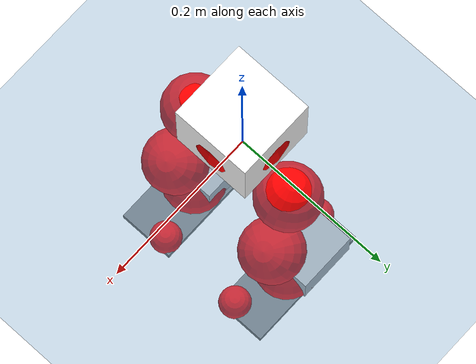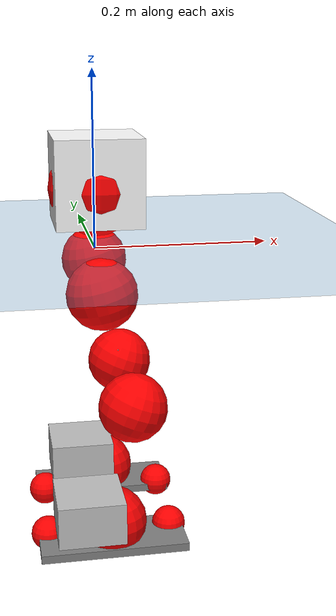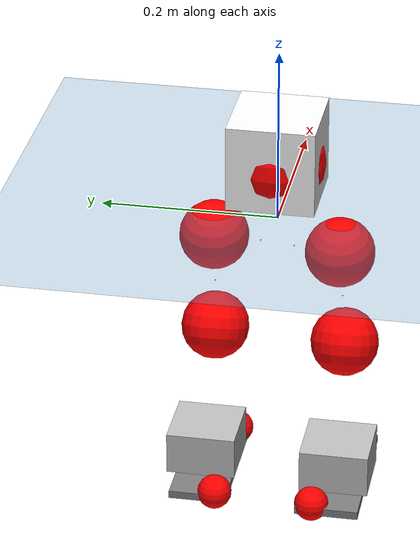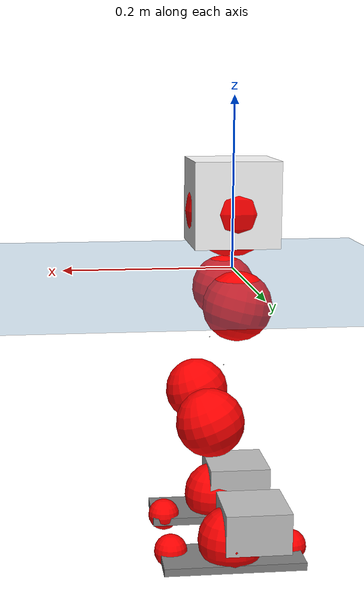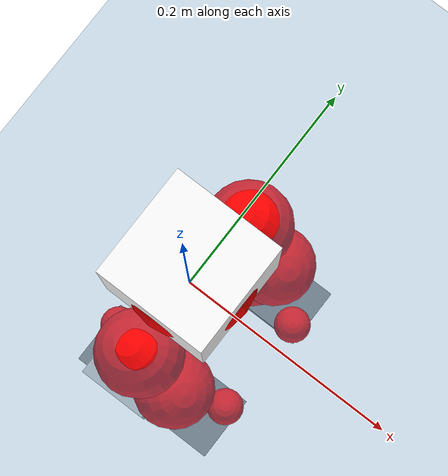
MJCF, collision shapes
<mujoco model="pi_12dof_release_v1">
  <compiler angle="radian" assetdir="assets" balanceinertia="true" inertiafromgeom="false"/>

  <option timestep="0.005" density="1.2" viscosity="2e-05"/>

  <size nkey="1"/>

  <visual>
    <quality shadowsize="8192"/>
    <map shadowclip="0.5"/>
  </visual>

  <default>
    <default class="/">
      <joint armature="0.01" damping="0.01" frictionloss="0.01"/>
      <geom contype="0" conaffinity="0" group="1" solref="-1000 -80"/>
      <site size="0.01 0.005 0.005" group="5"/>
      <general forcelimited="true" biastype="affine" gainprm="20" biasprm="0 -20 -0.5"/>
      <default class="foot">
        <geom size="0.0845 0.036 0.005" type="box" condim="6" group="4" priority="1" friction="0.9 0.2 0.2" solimp="0.015 1 0.005"/>
      </default>
      <default class="reward_collision_sphere">
        <geom group="5" rgba="1 0 0 1"/>
      </default>
    </default>
  </default>

  <asset>
    <texture type="skybox" colorspace="auto" name="//unnamed_texture_0" builtin="gradient" rgb1="0.95 0.95 0.95" rgb2="0.95 0.95 0.95" width="100" height="600"/>
    <texture type="2d" colorspace="auto" name="texplane" builtin="checker" rgb1="0.345 0.575 0.748" rgb2="0.345 0.575 0.748" markrgb="1 1 1" width="512" height="512"/>
    <material name="MatPlane" class="/" texture="texplane" texuniform="true" texrepeat="2 2" specular="0.9"/>
    <mesh name="baselink_1" class="/" file="baselink_1.STL"/>
    <mesh name="r_hip_pitch_link" class="/" file="r_hip_pitch_link.STL"/>
    <mesh name="r_hip_roll_link" class="/" file="r_hip_roll_link.STL"/>
    <mesh name="r_thigh_link" class="/" file="r_thigh_link.STL"/>
    <mesh name="r_calf_link" class="/" file="r_calf_link.STL"/>
    <mesh name="r_ankle_pitch_link" class="/" file="r_ankle_pitch_link.STL"/>
    <mesh name="r_ankle_roll_link" class="/" file="r_ankle_roll_link.STL"/>
    <mesh name="l_hip_pitch_link" class="/" file="l_hip_pitch_link.STL"/>
    <mesh name="l_hip_roll_link" class="/" file="l_hip_roll_link.STL"/>
    <mesh name="l_thigh_link" class="/" file="l_thigh_link.STL"/>
    <mesh name="l_calf_link" class="/" file="l_calf_link.STL"/>
    <mesh name="l_ankle_pitch_link" class="/" file="l_ankle_pitch_link.STL"/>
    <mesh name="l_ankle_roll_link" class="/" file="l_ankle_roll_link.STL"/>
  </asset>

  <worldbody>
    <geom name="floor" class="/" size="100 100 0.125" type="plane" group="0" material="MatPlane"/>
    <light name="toplight_shadow" class="/" pos="0 0 5" dir="0.0990148 0.0990148 -0.990148" type="directional" ambient="0.04 0.04 0.04" diffuse="0.55 0.55 0.55" specular="0.12 0.12 0.12"/>
    <light name="toplight_fill" class="/" pos="0 0 5" dir="0.0990148 0.0990148 -0.990148" type="directional" castshadow="false" ambient="0.04 0.04 0.04" diffuse="0.3 0.3 0.3" specular="0.08 0.08 0.08"/>
    <body name="trunk" pos="0.00243949 0.00139478 0.0008201" quat="1 -6.58281e-05 1.08072e-05 2.20738e-05">
      <inertial pos="0.00238962 -0.000225387 0.0393252" quat="0.69627 0.00310302 0.019192 0.717516" mass="2.10002" diaginertia="0.0141849 0.00643654 0.00363087"/>
      <joint name="//unnamed_joint_0" type="free"/>
      <geom name="//unnamed_geom_1" class="/" type="mesh" density="0" rgba="1 1 1 1" mesh="baselink_1"/>
      <geom name="//unnamed_geom_2" class="/" size="0.0493502 0.0493502 0.0493502" pos="0 0 0.0779071" type="box" rgba="1 1 1 1"/>
      <geom name="//unnamed_geom_3" class="reward_collision_sphere" size="0.0542852" pos="0 0 0.0681687"/>
      <site name="imu" class="/" pos="0.00105825 0.00510905 -0.00933573" size="0.00987004"/>
      <camera name="track" class="/" pos="0 -1.84706 0" quat="0.707107 0.707107 0 0" mode="trackcom"/>
      <camera name="ego_camera" class="/" pos="0.0797733 0 0.175291" quat="-0.5 -0.5 0.5 0.5"/>
      <body name="r_hip_pitch_link" pos="-0.000784814 -0.0202015 -0.0344441" quat="0.992244 0.00103486 -0.124299 0.00063038">
        <inertial pos="-0.00103725 -0.054107 0.000410566" quat="-0.0177007 0.70505 -0.0286145 0.708358" mass="0.358354" diaginertia="0.000149009 6.36749e-05 7.38722e-05"/>
        <joint name="r_hip_pitch_joint" class="/" pos="0 0 0" axis="-0.00960466 -0.999932 0.00665927" stiffness="0.000470044" range="-1.70812 1.30452" armature="0.00982205" damping="0.0210419" frictionloss="0.00997094"/>
        <geom name="//unnamed_geom_4" class="/" type="mesh" density="0" rgba="0.75294 0.75294 0.75294 1" mesh="r_hip_pitch_link"/>
        <geom name="//unnamed_geom_5" class="/" size="0.000493502 0.000493502 0.000493502" type="box" rgba="0.75294 0.75294 0.75294 1"/>
        <body name="r_hip_roll_link" pos="-0.00296755 -0.0521612 -0.00143894" quat="0.999999 -0.000502236 -0.000960757 0.000193139">
          <inertial pos="-0.000983997 -0.000653995 -0.0609178" quat="0.702727 -0.0708142 -0.0851104 0.702792" mass="0.367058" diaginertia="0.000450113 0.000185006 0.00011108"/>
          <joint name="r_hip_roll_joint" class="/" pos="0 0 0" axis="-0.999898 0.00893843 0.0110959" range="-0.142165 0.548348" armature="0.0105952" damping="0" frictionloss="0.00847104"/>
          <geom name="//unnamed_geom_6" class="/" type="mesh" density="0" rgba="0.75294 0.75294 0.75294 1" mesh="r_hip_roll_link"/>
          <geom name="//unnamed_geom_7" class="/" size="0.000493502 0.000493502 0.000493502" type="box" rgba="0.75294 0.75294 0.75294 1"/>
          <geom name="//unnamed_geom_8" class="reward_collision_sphere" size="0.0394802"/>
          <body name="r_thigh_link" pos="4.94041e-05 -0.00137304 -0.0664191" quat="0.999999 -0.000336692 -0.00122089 -0.000176517">
            <inertial pos="0.00246625 0.000558529 -0.0461724" quat="0.736539 0.676312 -0.00946097 0.00478916" mass="0.115655" diaginertia="0.000169527 6.597e-05 5.06608e-05"/>
            <joint name="r_thigh_joint" class="/" pos="0 0 0" axis="0.0135598 0.00810003 -0.999875" stiffness="0.000240972" range="-0.245607 0.634221" armature="0.0100611" damping="0.000140095" frictionloss="0.00889863"/>
            <geom name="//unnamed_geom_9" class="/" type="mesh" density="0" rgba="0.75294 0.75294 0.75294 1" mesh="r_thigh_link"/>
            <geom name="//unnamed_geom_10" class="/" size="0.000493502 0.000493502 0.000493502" type="box" rgba="0.75294 0.75294 0.75294 1"/>
            <body name="r_calf_link" pos="-0.00159818 -0.001535 -0.070688" quat="0.947641 -0.000537385 0.319337 0.000146304">
              <inertial pos="0.00156853 -3.94888e-05 -0.0700908" quat="0.999941 -0.0073724 -0.00153723 -0.007828" mass="0.791884" diaginertia="0.00495185 0.00232588 0.000156272"/>
              <joint name="r_calf_joint" class="/" pos="0 0 0" axis="-0.00174103 -0.999994 0.00312174" range="-1.63106 0.644079" armature="0.0109072" damping="0.00978878" frictionloss="0.0103037"/>
              <geom name="//unnamed_geom_11" class="/" type="mesh" density="0" rgba="0.75294 0.75294 0.75294 1" mesh="r_calf_link"/>
              <geom name="//unnamed_geom_12" class="/" size="0.000493502 0.000493502 0.000493502" type="box" rgba="0.75294 0.75294 0.75294 1"/>
              <geom name="//unnamed_geom_13" class="reward_collision_sphere" size="0.0394802"/>
              <body name="r_ankle_pitch_link" pos="-0.000485056 -0.00218867 -0.13408" quat="0.980063 3.20089e-05 -0.198685 -2.94407e-06">
                <inertial pos="0.00280961 0.00441978 -0.000389766" quat="0.00134976 0.707294 -0.000891426 0.706918" mass="0.170707" diaginertia="0.000423973 0.00014886 0.000105885"/>
                <joint name="r_ankle_pitch_joint" class="/" pos="0 0 0" axis="0.0152909 -0.999878 0.00331479" stiffness="0.00851694" range="-1.26468 0.500274" armature="0.0086911" damping="0.0175748" frictionloss="0.00846997"/>
                <geom name="//unnamed_geom_14" class="/" type="mesh" density="0" rgba="0.75294 0.75294 0.75294 1" mesh="r_ankle_pitch_link"/>
                <geom name="//unnamed_geom_15" class="/" size="0.0384932 0.0394802 0.0246751" type="box" rgba="0.75294 0.75294 0.75294 1"/>
                <body name="r_ankle_roll_link" pos="0.0811388 0.00504429 0.00247654" quat="1 -0.000326969 0.000567541 0.000544318">
                  <inertial pos="-0.0241687 -0.00250038 -0.0115034" quat="0.559789 0.427485 0.435322 0.560702" mass="0.487793" diaginertia="0.0016029 0.000723882 0.000256358"/>
                  <joint name="r_ankle_roll_joint" class="/" pos="0 0 0" axis="-0.99997 -0.000634381 -0.00772793" range="-0.146787 0.170797" armature="0.009868" damping="0.0167738" frictionloss="0.0103278"/>
                  <geom name="//unnamed_geom_16" class="/" type="mesh" density="0" rgba="0.75294 0.75294 0.75294 1" mesh="r_ankle_roll_link"/>
                  <geom name="//unnamed_geom_17" class="/" type="mesh" rgba="0.75294 0.75294 0.75294 1" mesh="r_ankle_roll_link"/>
                  <geom name="right_foot" class="foot" size="0.0848832 0.0364082 0.00483055" pos="-0.0542459 0 -0.0428489"/>
                  <geom name="//unnamed_geom_19" class="reward_collision_sphere" size="0.0394802" pos="-0.0531822 0 -0.0194768"/>
                  <geom name="//unnamed_geom_20" class="reward_collision_sphere" size="0.0197401" pos="0.0159547 0.0184706 -0.0389536"/>
                  <geom name="//unnamed_geom_21" class="reward_collision_sphere" size="0.0197401" pos="-0.127637 0.0184706 -0.0389536"/>
                  <site name="right_foot" class="foot" pos="-0.0542459 0 -0.0428489" size="0.00987004"/>
                </body>
              </body>
            </body>
          </body>
        </body>
      </body>
      <body name="l_hip_pitch_link" pos="0.000581185 0.0181011 -0.0318979" quat="0.99222 -5.53421e-05 -0.124497 0.000161726">
        <inertial pos="0.00296101 0.0487112 -0.000166303" quat="-0.0450818 0.700595 0.0210306 0.711823" mass="0.363179" diaginertia="0.000173649 7.00116e-05 8.49461e-05"/>
        <joint name="l_hip_pitch_joint" class="/" pos="0 0 0" axis="0.00277095 0.999995 -0.00175419" range="-1.29177 1.73175" armature="0.00898133" damping="0.00882201" frictionloss="0.01092"/>
        <geom name="//unnamed_geom_22" class="/" type="mesh" density="0" rgba="0.75294 0.75294 0.75294 1" mesh="l_hip_pitch_link"/>
        <geom name="//unnamed_geom_23" class="/" size="0.000493502 0.000493502 0.000493502" type="box" rgba="0.75294 0.75294 0.75294 1"/>
        <body name="l_hip_roll_link" pos="0.00339238 0.0535788 -0.000477268" quat="1 -0.000390883 -0.000727342 0.000139466">
          <inertial pos="-0.000697129 0.00182061 -0.0598719" quat="0.70221 -0.0882284 -0.0765636 0.702321" mass="0.384662" diaginertia="0.000453261 0.000191488 0.000114438"/>
          <joint name="l_hip_roll_joint" class="/" pos="0 0 0" axis="-0.999956 -0.00767227 0.00532989" range="-0.478809 0.152989" armature="0.0113165" damping="0" frictionloss="0.0086157"/>
          <geom name="//unnamed_geom_24" class="/" type="mesh" density="0" rgba="0.75294 0.75294 0.75294 1" mesh="l_hip_roll_link"/>
          <geom name="//unnamed_geom_25" class="/" size="0.000493502 0.000493502 0.000493502" type="box" rgba="0.75294 0.75294 0.75294 1"/>
          <geom name="//unnamed_geom_26" class="reward_collision_sphere" size="0.0394802"/>
          <body name="l_thigh_link" pos="-0.00186106 0.00199127 -0.0688767" quat="1 0.000305835 -0.000402317 -0.000552174">
            <inertial pos="-0.000612742 -0.0013082 -0.0451859" quat="0.675269 0.737473 0.0103161 -0.00627306" mass="0.105886" diaginertia="0.000170891 6.246e-05 5.10975e-05"/>
            <joint name="l_thigh_joint" class="/" pos="0 0 0" axis="-0.00154852 0.00111446 -0.999998" range="-0.641845 0.322733" armature="0.0102401" damping="0" frictionloss="0.00937266"/>
            <geom name="//unnamed_geom_27" class="/" type="mesh" density="0" rgba="0.75294 0.75294 0.75294 1" mesh="l_thigh_link"/>
            <geom name="//unnamed_geom_28" class="/" size="0.000493502 0.000493502 0.000493502" type="box" rgba="0.75294 0.75294 0.75294 1"/>
            <body name="l_calf_link" pos="-0.00224128 0.00277202 -0.0688077" quat="0.947682 -0.000386862 0.319216 0.000140642">
              <inertial pos="0.00330751 0.00509116 -0.0693254" quat="0.999978 -0.00209659 -0.00629679 -0.000693277" mass="0.791398" diaginertia="0.0049922 0.00245488 0.000159504"/>
              <joint name="l_calf_joint" class="/" pos="0 0 0" axis="-0.00549602 0.999931 -0.0103462" range="-0.593204 1.6806" armature="0.00986318" damping="0.00244762" frictionloss="0.00854695"/>
              <geom name="//unnamed_geom_29" class="/" type="mesh" density="0" rgba="0.75294 0.75294 0.75294 1" mesh="l_calf_link"/>
              <geom name="//unnamed_geom_30" class="/" size="0.000493502 0.000493502 0.000493502" type="box" rgba="0.75294 0.75294 0.75294 1"/>
              <geom name="//unnamed_geom_31" class="reward_collision_sphere" size="0.0394802"/>
              <body name="l_ankle_pitch_link" pos="0.000164735 0.00109944 -0.134453" quat="0.980044 -0.000627689 -0.198779 -0.000162084">
                <inertial pos="0.0057152 2.97108e-06 9.04128e-05" quat="0.00140312 0.706631 0.00809717 0.707535" mass="0.170478" diaginertia="0.00042315 0.000155027 0.000107342"/>
                <joint name="l_ankle_pitch_joint" class="/" pos="0 0 0" axis="-0.00384634 0.999984 -0.00424228" stiffness="0.00016363" range="-0.45145 1.35849" armature="0.009701" damping="0" frictionloss="0.00954979"/>
                <geom name="//unnamed_geom_32" class="/" type="mesh" density="0" rgba="0.75294 0.75294 0.75294 1" mesh="l_ankle_pitch_link"/>
                <geom name="//unnamed_geom_33" class="/" size="0.0384932 0.0394802 0.0246751" type="box" rgba="0.75294 0.75294 0.75294 1"/>
                <body name="l_ankle_roll_link" pos="0.0795099 0.00025609 -0.000155667" quat="1 -0.000192476 1.07382e-05 9.13059e-06">
                  <inertial pos="-0.0281831 -0.00154292 -0.0120615" quat="0.562312 0.431113 0.433204 0.557029" mass="0.521865" diaginertia="0.0015058 0.000724382 0.00025069"/>
                  <joint name="l_ankle_roll_joint" class="/" pos="0 0 0" axis="-0.999996 0.00250535 -0.00143748" stiffness="0.00878664" range="-0.159795 0.0990114" armature="0.00934827" damping="0.0187689" frictionloss="0.0111072"/>
                  <geom name="//unnamed_geom_34" class="/" type="mesh" density="0" rgba="0.75294 0.75294 0.75294 1" mesh="l_ankle_roll_link"/>
                  <geom name="//unnamed_geom_35" class="/" type="mesh" rgba="0.75294 0.75294 0.75294 1" mesh="l_ankle_roll_link"/>
                  <geom name="left_foot" class="foot" size="0.0831144 0.033169 0.00460419" pos="-0.0542459 0 -0.0428489"/>
                  <geom name="//unnamed_geom_37" class="reward_collision_sphere" size="0.0394802" pos="-0.0531822 0 -0.0194768"/>
                  <geom name="//unnamed_geom_38" class="reward_collision_sphere" size="0.0197401" pos="0.0159547 -0.0184706 -0.0389536"/>
                  <geom name="//unnamed_geom_39" class="reward_collision_sphere" size="0.0197401" pos="-0.127637 -0.0184706 -0.0389536"/>
                  <site name="left_foot" class="foot" pos="-0.0542459 0 -0.0428489" size="0.00987004"/>
                </body>
              </body>
            </body>
          </body>
        </body>
      </body>
    </body>
  </worldbody>

  <contact>
    <pair class="/" geom1="floor" geom2="right_foot" name="//unnamed_contact_1"/>
    <pair class="/" geom1="floor" geom2="left_foot" name="//unnamed_contact_0"/>
  </contact>

  <actuator>
    <general name="r_hip_pitch_joint" class="/" joint="r_hip_pitch_joint" forcerange="-22.2339 22.2339" gainprm="19.3063" biasprm="0 -19.3063 -0.504074"/>
    <general name="r_hip_roll_joint" class="/" joint="r_hip_roll_joint" forcerange="-22.5319 22.5319" gainprm="19.3063" biasprm="0 -19.3063 -0.504074"/>
    <general name="r_thigh_joint" class="/" joint="r_thigh_joint" forcerange="-19.7539 19.7539" gainprm="19.3063" biasprm="0 -19.3063 -0.504074"/>
    <general name="r_calf_joint" class="/" joint="r_calf_joint" forcerange="-22.0872 22.0872" gainprm="19.3063" biasprm="0 -19.3063 -0.504074"/>
    <general name="r_ankle_pitch_joint" class="/" joint="r_ankle_pitch_joint" forcerange="-20.5953 20.5953" gainprm="19.3063" biasprm="0 -19.3063 -0.504074"/>
    <general name="r_ankle_roll_joint" class="/" joint="r_ankle_roll_joint" forcerange="-21.0746 21.0746" gainprm="19.3063" biasprm="0 -19.3063 -0.504074"/>
    <general name="l_hip_pitch_joint" class="/" joint="l_hip_pitch_joint" forcerange="-20.9185 20.9185" gainprm="19.3063" biasprm="0 -19.3063 -0.504074"/>
    <general name="l_hip_roll_joint" class="/" joint="l_hip_roll_joint" forcerange="-18.666 18.666" gainprm="19.3063" biasprm="0 -19.3063 -0.504074"/>
    <general name="l_thigh_joint" class="/" joint="l_thigh_joint" forcerange="-22.0524 22.0524" gainprm="19.3063" biasprm="0 -19.3063 -0.504074"/>
    <general name="l_calf_joint" class="/" joint="l_calf_joint" forcerange="-20.6954 20.6954" gainprm="19.3063" biasprm="0 -19.3063 -0.504074"/>
    <general name="l_ankle_pitch_joint" class="/" joint="l_ankle_pitch_joint" forcerange="-19.8992 19.8992" gainprm="19.3063" biasprm="0 -19.3063 -0.504074"/>
    <general name="l_ankle_roll_joint" class="/" joint="l_ankle_roll_joint" forcerange="-22.7468 22.7468" gainprm="19.3063" biasprm="0 -19.3063 -0.504074"/>
  </actuator>

  <sensor>
    <gyro site="imu" name="imu_angular_velocity"/>
    <velocimeter site="imu" name="imu_linear_velocity"/>
    <framelinvel objtype="site" objname="left_foot" name="left_foot_global_linear_velocity"/>
    <framelinvel objtype="site" objname="right_foot" name="right_foot_global_linear_velocity"/>
  </sensor>

  <keyframe>
    <key name="home" qpos="0 0 0.291 1 0 0 0 0.4 0 0 -0.8 0.4 0 -0.4 0 0 0.8 -0.4 0"/>
  </keyframe>
</mujoco>
